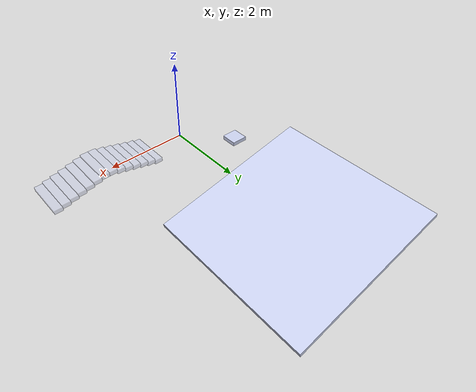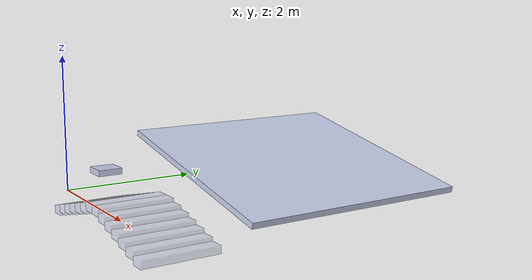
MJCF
<mujoco>
<asset>
    <material name="red" specular="0.5" shininess="0.25" rgba="0.9 0.0 0.0 0.5"/>
</asset>

<default>
 <default class="visual">
  <geom type="mesh" rgba="0.79216 0.81961 0.93333 1" contype="0" conaffinity="0" group="2"/>
 </default>

 <default class="collision_rod">
  <geom type="cylinder" material="red" group="1"/>
 </default>

 <default class="collision_box">
   <geom type="box" material="red" group="1"/>
 </default>
 <default class="collision_sphere">
   <geom type="sphere" material="red" group="1"/>
 </default>
 <default class="collision_motor">
  <geom type="cylinder" material="red" size="0.05 0.02" group="1"/>
 </default>

 <default class="collision">
  <geom type="mesh" material="red" group="1"/>
 </default>

 <default class="active">
  <!--tested good param with low sim-to-real gap -->
  <joint armature="1e-4" damping="0.02" frictionloss="0.02"/>
 </default>

 <default class="passive">
  <joint armature="1e-3" damping="0.01" frictionloss="0.01"/>
 </default>
</default>

<!-- terrain-->
<!-- stairs-->
<worldbody>
    <geom type="box" pos= "1 0 0" size="0.1 0.5 0.05" rgba="0.79216 0.81961 0.93333 0.5" solref="1e-3 1"/>
    <geom type="box" pos= "1.2 0 0.05" size="0.1 0.5 0.05" rgba="0.79216 0.81961 0.93333 0.5" solref="1e-3 1"/>
    <geom type="box" pos= "1.4 0 0.1" size="0.1 0.5 0.05" rgba="0.79216 0.81961 0.93333 0.5" solref="1e-3 1"/>
    <geom type="box" pos= "1.6 0 0.15" size="0.1 0.5 0.05" rgba="0.79216 0.81961 0.93333 0.5" solref="1e-3 1"/>
    <geom type="box" pos= "1.8 0 0.2" size="0.1 0.5 0.05" rgba="0.79216 0.81961 0.93333 0.5" solref="1e-3 1"/>
    <geom type="box" pos= "2.0 0 0.25" size="0.1 0.5 0.05" rgba="0.79216 0.81961 0.93333 0.5" solref="1e-3 1"/>
    <geom type="box" pos= "2.2 0 0.3" size="0.1 0.5 0.05" rgba="0.79216 0.81961 0.93333 0.5" solref="1e-3 1"/>

    <geom type="box" pos= "2.4 0 0.3" size="0.1 0.5 0.05" rgba="0.79216 0.81961 0.93333 0.5" solref="1e-3 1"/>
    <geom type="box" pos= "2.6 0 0.25" size="0.1 0.5 0.05" rgba="0.79216 0.81961 0.93333 0.5" solref="1e-3 1"/>
    <geom type="box" pos= "2.8 0 0.2" size="0.1 0.5 0.05" rgba="0.79216 0.81961 0.93333 0.5" solref="1e-3 1"/>
    <geom type="box" pos= "3.0 0 0.15" size="0.1 0.5 0.05" rgba="0.79216 0.81961 0.93333 0.5" solref="1e-3 1"/>
    <geom type="box" pos= "3.2 0 0.1" size="0.1 0.5 0.05" rgba="0.79216 0.81961 0.93333 0.5" solref="1e-3 1"/>
    <geom type="box" pos= "3.4 0 0.05" size="0.1 0.5 0.05" rgba="0.79216 0.81961 0.93333 0.5" solref="1e-3 1"/>
    <geom type="box" pos= "3.6 0 0.0" size="0.1 0.5 0.05" rgba="0.79216 0.81961 0.93333 0.5" solref="1e-3 1"/>

</worldbody>

<!-- platform-->
<worldbody>
    <geom type="box" pos= "-1 1 0" size="0.2 0.2 0.05" rgba="0.79216 0.81961 0.93333 1" solref="1e-3 1"/>
</worldbody>

<!-- slope-->
<worldbody>
    <geom type="box" pos= "0 4 0" quat="1 0 0.1 0" size="2 2 0.05" rgba="0.79216 0.81961 0.93333 1" solref="1e-3 1"/>
</worldbody>

</mujoco>
